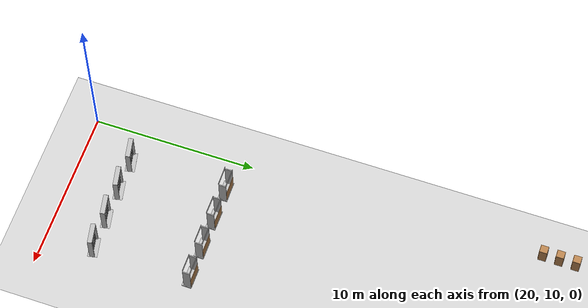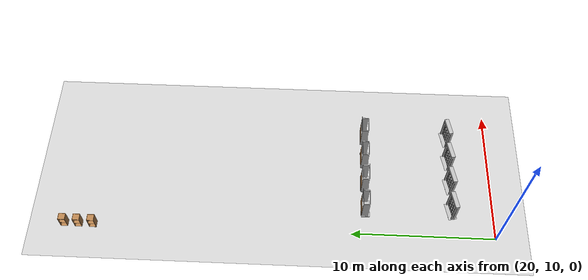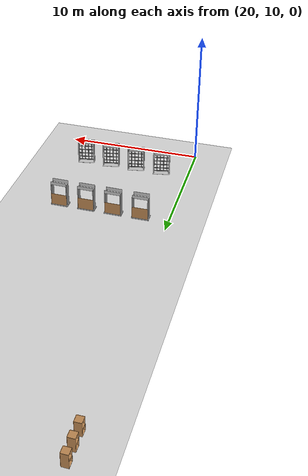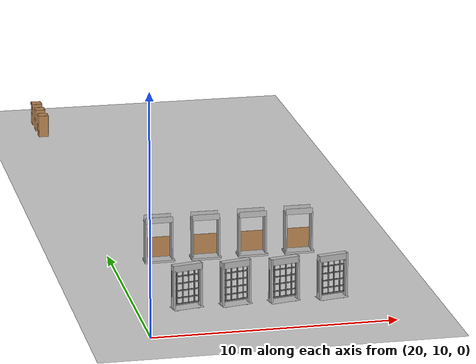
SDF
<sdf version="1.7">
 <world name="default">
  <model name="ground_plane">
   <static>1</static>
   <link name="link">
    <collision name="collision">
     <geometry><plane><normal>0 0 1</normal><size>100 100</size></plane></geometry>
     <surface>
      <contact><collide_bitmask>65535</collide_bitmask></contact>
      <friction><ode><mu>100</mu><mu2>50</mu2></ode></friction>
     </surface>
    </collision>
    <visual name="visual">
     <cast_shadows>0</cast_shadows>
     <geometry><plane><normal>0 0 1</normal><size>100 100</size></plane></geometry>
     <material>
      <script><uri>file://media/materials/scripts/gazebo.material</uri><name>Gazebo/Grey</name></script>
     </material>
    </visual>
   </link>
  </model>
  <model name="cabinet_clone_2">
   <static>1</static>
   <link name="cabinet_bottom_plate">
    <inertial>
     <pose>0 0 -1 0 -0 0</pose>
     <inertia><ixx>2.05</ixx><ixy>0</ixy><ixz>0</ixz><iyy>2.05</iyy><iyz>0</iyz><izz>2.05</izz></inertia>
     <mass>25</mass>
    </inertial>
    <collision name="cabinet_bottom_plate_geom">
     <pose>0 0 0.01 0 -0 0</pose>
     <geometry><box><size>0.45 0.45 0.02</size></box></geometry>
    </collision>
    <visual name="cabinet_bottom_plate_geom_visual">
     <pose>0 0 0.01 0 -0 0</pose>
     <geometry><box><size>0.45 0.45 0.02</size></box></geometry>
     <material>
      <script><uri>file://media/materials/scripts/gazebo.material</uri><name>Gazebo/Wood</name></script>
     </material>
    </visual>
    <collision name="cabinet_bottom_plate_geom_cabinet_back_plate">
     <pose>0.235 0 0.51 0 -0 0</pose>
     <geometry><box><size>0.02 0.45 1.02</size></box></geometry>
    </collision>
    <visual name="cabinet_bottom_plate_geom_cabinet_back_plate_visual">
     <pose>0.235 0 0.51 0 -0 0</pose>
     <geometry><box><size>0.02 0.45 1.02</size></box></geometry>
     <material>
      <script><uri>file://media/materials/scripts/gazebo.material</uri><name>Gazebo/Wood</name></script>
     </material>
    </visual>
    <collision name="cabinet_bottom_plate_geom_cabinet_left_plate">
     <pose>0 0.235 0.51 0 -0 0</pose>
     <geometry><box><size>0.45 0.02 1.02</size></box></geometry>
    </collision>
    <visual name="cabinet_bottom_plate_geom_cabinet_left_plate_visual">
     <pose>0 0.235 0.51 0 -0 0</pose>
     <geometry><box><size>0.45 0.02 1.02</size></box></geometry>
     <material>
      <script><uri>file://media/materials/scripts/gazebo.material</uri><name>Gazebo/Wood</name></script>
     </material>
    </visual>
    <collision name="cabinet_bottom_plate_geom_cabinet_middle_plate">
     <pose>0 0 0.51 0 -0 0</pose>
     <geometry><box><size>0.45 0.45 0.02</size></box></geometry>
    </collision>
    <visual name="cabinet_bottom_plate_geom_cabinet_middle_plate_visual">
     <pose>0 0 0.51 0 -0 0</pose>
     <geometry><box><size>0.45 0.45 0.02</size></box></geometry>
     <material>
      <script><uri>file://media/materials/scripts/gazebo.material</uri><name>Gazebo/Wood</name></script>
     </material>
    </visual>
    <collision name="cabinet_bottom_plate_geom_cabinet_right_plate">
     <pose>0 -0.235 0.51 0 -0 0</pose>
     <geometry><box><size>0.45 0.02 1.02</size></box></geometry>
    </collision>
    <visual name="cabinet_bottom_plate_geom_cabinet_right_plate_visual">
     <pose>0 -0.235 0.51 0 -0 0</pose>
     <geometry><box><size>0.45 0.02 1.02</size></box></geometry>
     <material>
      <script><uri>file://media/materials/scripts/gazebo.material</uri><name>Gazebo/Wood</name></script>
     </material>
    </visual>
    <collision name="cabinet_bottom_plate_geom_cabinet_top_plate">
     <pose>0 0 1.01 0 -0 0</pose>
     <geometry><box><size>0.45 0.45 0.02</size></box></geometry>
    </collision>
    <visual name="cabinet_bottom_plate_geom_cabinet_top_plate_visual">
     <pose>0 0 1.01 0 -0 0</pose>
     <geometry><box><size>0.45 0.45 0.02</size></box></geometry>
     <material>
      <script><uri>file://media/materials/scripts/gazebo.material</uri><name>Gazebo/Wood</name></script>
     </material>
    </visual>
   </link>
   <pose>20 40 0 0 -0 0</pose>
  </model>
  <model name="cabinet_clone_3">
   <static>1</static>
   <link name="cabinet_bottom_plate">
    <inertial>
     <pose>0 0 -1 0 -0 0</pose>
     <inertia><ixx>2.05</ixx><ixy>0</ixy><ixz>0</ixz><iyy>2.05</iyy><iyz>0</iyz><izz>2.05</izz></inertia>
     <mass>25</mass>
    </inertial>
    <collision name="cabinet_bottom_plate_geom">
     <pose>0 0 0.01 0 -0 0</pose>
     <geometry><box><size>0.45 0.45 0.02</size></box></geometry>
    </collision>
    <visual name="cabinet_bottom_plate_geom_visual">
     <pose>0 0 0.01 0 -0 0</pose>
     <geometry><box><size>0.45 0.45 0.02</size></box></geometry>
     <material>
      <script><uri>file://media/materials/scripts/gazebo.material</uri><name>Gazebo/Wood</name></script>
     </material>
    </visual>
    <collision name="cabinet_bottom_plate_geom_cabinet_back_plate">
     <pose>0.235 0 0.51 0 -0 0</pose>
     <geometry><box><size>0.02 0.45 1.02</size></box></geometry>
    </collision>
    <visual name="cabinet_bottom_plate_geom_cabinet_back_plate_visual">
     <pose>0.235 0 0.51 0 -0 0</pose>
     <geometry><box><size>0.02 0.45 1.02</size></box></geometry>
     <material>
      <script><uri>file://media/materials/scripts/gazebo.material</uri><name>Gazebo/Wood</name></script>
     </material>
    </visual>
    <collision name="cabinet_bottom_plate_geom_cabinet_left_plate">
     <pose>0 0.235 0.51 0 -0 0</pose>
     <geometry><box><size>0.45 0.02 1.02</size></box></geometry>
    </collision>
    <visual name="cabinet_bottom_plate_geom_cabinet_left_plate_visual">
     <pose>0 0.235 0.51 0 -0 0</pose>
     <geometry><box><size>0.45 0.02 1.02</size></box></geometry>
     <material>
      <script><uri>file://media/materials/scripts/gazebo.material</uri><name>Gazebo/Wood</name></script>
     </material>
    </visual>
    <collision name="cabinet_bottom_plate_geom_cabinet_middle_plate">
     <pose>0 0 0.51 0 -0 0</pose>
     <geometry><box><size>0.45 0.45 0.02</size></box></geometry>
    </collision>
    <visual name="cabinet_bottom_plate_geom_cabinet_middle_plate_visual">
     <pose>0 0 0.51 0 -0 0</pose>
     <geometry><box><size>0.45 0.45 0.02</size></box></geometry>
     <material>
      <script><uri>file://media/materials/scripts/gazebo.material</uri><name>Gazebo/Wood</name></script>
     </material>
    </visual>
    <collision name="cabinet_bottom_plate_geom_cabinet_right_plate">
     <pose>0 -0.235 0.51 0 -0 0</pose>
     <geometry><box><size>0.45 0.02 1.02</size></box></geometry>
    </collision>
    <visual name="cabinet_bottom_plate_geom_cabinet_right_plate_visual">
     <pose>0 -0.235 0.51 0 -0 0</pose>
     <geometry><box><size>0.45 0.02 1.02</size></box></geometry>
     <material>
      <script><uri>file://media/materials/scripts/gazebo.material</uri><name>Gazebo/Wood</name></script>
     </material>
    </visual>
    <collision name="cabinet_bottom_plate_geom_cabinet_top_plate">
     <pose>0 0 1.01 0 -0 0</pose>
     <geometry><box><size>0.45 0.45 0.02</size></box></geometry>
    </collision>
    <visual name="cabinet_bottom_plate_geom_cabinet_top_plate_visual">
     <pose>0 0 1.01 0 -0 0</pose>
     <geometry><box><size>0.45 0.45 0.02</size></box></geometry>
     <material>
      <script><uri>file://media/materials/scripts/gazebo.material</uri><name>Gazebo/Wood</name></script>
     </material>
    </visual>
   </link>
   <pose>20 39 0 0 -0 0</pose>
  </model>
  <model name="cabinet_clone_4">
   <static>1</static>
   <link name="cabinet_bottom_plate">
    <inertial>
     <pose>0 0 -1 0 -0 0</pose>
     <inertia><ixx>2.05</ixx><ixy>0</ixy><ixz>0</ixz><iyy>2.05</iyy><iyz>0</iyz><izz>2.05</izz></inertia>
     <mass>25</mass>
    </inertial>
    <collision name="cabinet_bottom_plate_geom">
     <pose>0 0 0.01 0 -0 0</pose>
     <geometry><box><size>0.45 0.45 0.02</size></box></geometry>
    </collision>
    <visual name="cabinet_bottom_plate_geom_visual">
     <pose>0 0 0.01 0 -0 0</pose>
     <geometry><box><size>0.45 0.45 0.02</size></box></geometry>
     <material>
      <script><uri>file://media/materials/scripts/gazebo.material</uri><name>Gazebo/Wood</name></script>
     </material>
    </visual>
    <collision name="cabinet_bottom_plate_geom_cabinet_back_plate">
     <pose>0.235 0 0.51 0 -0 0</pose>
     <geometry><box><size>0.02 0.45 1.02</size></box></geometry>
    </collision>
    <visual name="cabinet_bottom_plate_geom_cabinet_back_plate_visual">
     <pose>0.235 0 0.51 0 -0 0</pose>
     <geometry><box><size>0.02 0.45 1.02</size></box></geometry>
     <material>
      <script><uri>file://media/materials/scripts/gazebo.material</uri><name>Gazebo/Wood</name></script>
     </material>
    </visual>
    <collision name="cabinet_bottom_plate_geom_cabinet_left_plate">
     <pose>0 0.235 0.51 0 -0 0</pose>
     <geometry><box><size>0.45 0.02 1.02</size></box></geometry>
    </collision>
    <visual name="cabinet_bottom_plate_geom_cabinet_left_plate_visual">
     <pose>0 0.235 0.51 0 -0 0</pose>
     <geometry><box><size>0.45 0.02 1.02</size></box></geometry>
     <material>
      <script><uri>file://media/materials/scripts/gazebo.material</uri><name>Gazebo/Wood</name></script>
     </material>
    </visual>
    <collision name="cabinet_bottom_plate_geom_cabinet_middle_plate">
     <pose>0 0 0.51 0 -0 0</pose>
     <geometry><box><size>0.45 0.45 0.02</size></box></geometry>
    </collision>
    <visual name="cabinet_bottom_plate_geom_cabinet_middle_plate_visual">
     <pose>0 0 0.51 0 -0 0</pose>
     <geometry><box><size>0.45 0.45 0.02</size></box></geometry>
     <material>
      <script><uri>file://media/materials/scripts/gazebo.material</uri><name>Gazebo/Wood</name></script>
     </material>
    </visual>
    <collision name="cabinet_bottom_plate_geom_cabinet_right_plate">
     <pose>0 -0.235 0.51 0 -0 0</pose>
     <geometry><box><size>0.45 0.02 1.02</size></box></geometry>
    </collision>
    <visual name="cabinet_bottom_plate_geom_cabinet_right_plate_visual">
     <pose>0 -0.235 0.51 0 -0 0</pose>
     <geometry><box><size>0.45 0.02 1.02</size></box></geometry>
     <material>
      <script><uri>file://media/materials/scripts/gazebo.material</uri><name>Gazebo/Wood</name></script>
     </material>
    </visual>
    <collision name="cabinet_bottom_plate_geom_cabinet_top_plate">
     <pose>0 0 1.01 0 -0 0</pose>
     <geometry><box><size>0.45 0.45 0.02</size></box></geometry>
    </collision>
    <visual name="cabinet_bottom_plate_geom_cabinet_top_plate_visual">
     <pose>0 0 1.01 0 -0 0</pose>
     <geometry><box><size>0.45 0.45 0.02</size></box></geometry>
     <material>
      <script><uri>file://media/materials/scripts/gazebo.material</uri><name>Gazebo/Wood</name></script>
     </material>
    </visual>
   </link>
   <pose>20 38 0 0 -0 0</pose>
  </model>
  <model name="frc2016_drawbridge">
   <link name="base">
    <inertial>
     <mass>10</mass>
     <pose>0 0 1 0 -0 0</pose>
     <inertia><ixx>3.64907</ixx><ixy>0</ixy><ixz>0</ixz><iyy>4.67075</iyy><iyz>0</iyz><izz>1.66649</izz></inertia>
    </inertial>
    <visual name="platform">
     <pose>0 0 0.0425 0 -0 0</pose>
     <geometry><box><size>1.27 0.5969 0.085</size></box></geometry>
    </visual>
    <collision name="platform">
     <pose>0 0 0.0425 0 -0 0</pose>
     <geometry><box><size>1.27 0.5969 0.085</size></box></geometry>
    </collision>
    <visual name="right_wall">
     <pose>0.55879 0.04444 0.889 0 -0 0</pose>
     <geometry><box><size>0.05715 0.45698 1.77165</size></box></geometry>
    </visual>
    <collision name="right_wall">
     <pose>0.55879 0.04444 0.889 0 -0 0</pose>
     <geometry><box><size>0.05715 0.45698 1.77165</size></box></geometry>
    </collision>
    <visual name="left_wall">
     <pose>-0.55879 0.04444 0.889 0 -0 0</pose>
     <geometry><box><size>0.05715 0.45698 1.77165</size></box></geometry>
    </visual>
    <collision name="left_wall">
     <pose>-0.55879 0.04444 0.889 0 -0 0</pose>
     <geometry><box><size>0.05715 0.45698 1.77165</size></box></geometry>
    </collision>
    <visual name="front_upper_wall">
     <pose>0 0.27611 1.84286 0 -0 0</pose>
     <geometry><box><size>1.1557 0.006347 0.254</size></box></geometry>
    </visual>
    <collision name="front_upper_wall">
     <pose>0 0.27611 1.84286 0 -0 0</pose>
     <geometry><box><size>1.1557 0.006347 0.254</size></box></geometry>
    </collision>
    <visual name="back_upper_wall">
     <pose>0 -0.18722 1.84286 0 -0 0</pose>
     <geometry><box><size>1.1557 0.006347 0.254</size></box></geometry>
    </visual>
    <collision name="back_upper_wall">
     <pose>0 -0.18722 1.84286 0 -0 0</pose>
     <geometry><box><size>1.1557 0.006347 0.254</size></box></geometry>
    </collision>
   </link>
   <link name="bridge">
    <pose>0 0.28245 0.50577 0 -0 0</pose>
    <inertial>
     <mass>2</mass>
     <pose>0 -0.28245 -0.50577 0 -0 0</pose>
     <inertia>
      <ixx>0.139361</ixx>
      <ixy>0</ixy>
      <ixz>0</ixz>
      <iyy>0.357088</iyy>
      <iyz>0</iyz>
      <izz>0.217741</izz>
     </inertia>
    </inertial>
    <visual name="visual">
     <geometry><box><size>1.14298 0.006347 0.9144</size></box></geometry>
     <material><script><name>Gazebo/WoodFloor</name><uri>__default__</uri></script></material>
    </visual>
    <collision name="collision"><geometry><box><size>1.14298 0.006347 0.9144</size></box></geometry></collision>
   </link>
   <joint name="bridge_joint" type="revolute">
    <pose>0 0 -0.4172 0 -0 0</pose>
    <parent>base</parent>
    <child>bridge</child>
    <axis>
     <xyz>1 0 0</xyz>
     <limit><lower>-2</lower><upper>0</upper></limit>
     <dynamics><spring_reference>0</spring_reference><spring_stiffness>0</spring_stiffness></dynamics>
    </axis>
   </joint>
   <pose>27.9994 18.999 0.009997 -2e-06 4e-06 -0.002642</pose>
  </model>
  <model name="frc2016_drawbridge_0">
   <link name="base">
    <inertial>
     <mass>10</mass>
     <pose>0 0 1 0 -0 0</pose>
     <inertia><ixx>3.64907</ixx><ixy>0</ixy><ixz>0</ixz><iyy>4.67075</iyy><iyz>0</iyz><izz>1.66649</izz></inertia>
    </inertial>
    <visual name="platform">
     <pose>0 0 0.0425 0 -0 0</pose>
     <geometry><box><size>1.27 0.5969 0.085</size></box></geometry>
    </visual>
    <collision name="platform">
     <pose>0 0 0.0425 0 -0 0</pose>
     <geometry><box><size>1.27 0.5969 0.085</size></box></geometry>
    </collision>
    <visual name="right_wall">
     <pose>0.55879 0.04444 0.889 0 -0 0</pose>
     <geometry><box><size>0.05715 0.45698 1.77165</size></box></geometry>
    </visual>
    <collision name="right_wall">
     <pose>0.55879 0.04444 0.889 0 -0 0</pose>
     <geometry><box><size>0.05715 0.45698 1.77165</size></box></geometry>
    </collision>
    <visual name="left_wall">
     <pose>-0.55879 0.04444 0.889 0 -0 0</pose>
     <geometry><box><size>0.05715 0.45698 1.77165</size></box></geometry>
    </visual>
    <collision name="left_wall">
     <pose>-0.55879 0.04444 0.889 0 -0 0</pose>
     <geometry><box><size>0.05715 0.45698 1.77165</size></box></geometry>
    </collision>
    <visual name="front_upper_wall">
     <pose>0 0.27611 1.84286 0 -0 0</pose>
     <geometry><box><size>1.1557 0.006347 0.254</size></box></geometry>
    </visual>
    <collision name="front_upper_wall">
     <pose>0 0.27611 1.84286 0 -0 0</pose>
     <geometry><box><size>1.1557 0.006347 0.254</size></box></geometry>
    </collision>
    <visual name="back_upper_wall">
     <pose>0 -0.18722 1.84286 0 -0 0</pose>
     <geometry><box><size>1.1557 0.006347 0.254</size></box></geometry>
    </visual>
    <collision name="back_upper_wall">
     <pose>0 -0.18722 1.84286 0 -0 0</pose>
     <geometry><box><size>1.1557 0.006347 0.254</size></box></geometry>
    </collision>
   </link>
   <link name="bridge">
    <pose>0 0.28245 0.50577 0 -0 0</pose>
    <inertial>
     <mass>2</mass>
     <pose>0 -0.28245 -0.50577 0 -0 0</pose>
     <inertia>
      <ixx>0.139361</ixx>
      <ixy>0</ixy>
      <ixz>0</ixz>
      <iyy>0.357088</iyy>
      <iyz>0</iyz>
      <izz>0.217741</izz>
     </inertia>
    </inertial>
    <visual name="visual">
     <geometry><box><size>1.14298 0.006347 0.9144</size></box></geometry>
     <material><script><name>Gazebo/WoodFloor</name><uri>__default__</uri></script></material>
    </visual>
    <collision name="collision"><geometry><box><size>1.14298 0.006347 0.9144</size></box></geometry></collision>
   </link>
   <joint name="bridge_joint" type="revolute">
    <pose>0 0 -0.4172 0 -0 0</pose>
    <parent>base</parent>
    <child>bridge</child>
    <axis>
     <xyz>1 0 0</xyz>
     <limit><lower>-2</lower><upper>0</upper></limit>
     <dynamics><spring_reference>0</spring_reference><spring_stiffness>0</spring_stiffness></dynamics>
    </axis>
   </joint>
   <pose>25.9995 18.9991 0.009997 -1e-06 -4e-06 0.004725</pose>
  </model>
  <model name="frc2016_drawbridge_1">
   <link name="base">
    <inertial>
     <mass>10</mass>
     <pose>0 0 1 0 -0 0</pose>
     <inertia><ixx>3.64907</ixx><ixy>0</ixy><ixz>0</ixz><iyy>4.67075</iyy><iyz>0</iyz><izz>1.66649</izz></inertia>
    </inertial>
    <visual name="platform">
     <pose>0 0 0.0425 0 -0 0</pose>
     <geometry><box><size>1.27 0.5969 0.085</size></box></geometry>
    </visual>
    <collision name="platform">
     <pose>0 0 0.0425 0 -0 0</pose>
     <geometry><box><size>1.27 0.5969 0.085</size></box></geometry>
    </collision>
    <visual name="right_wall">
     <pose>0.55879 0.04444 0.889 0 -0 0</pose>
     <geometry><box><size>0.05715 0.45698 1.77165</size></box></geometry>
    </visual>
    <collision name="right_wall">
     <pose>0.55879 0.04444 0.889 0 -0 0</pose>
     <geometry><box><size>0.05715 0.45698 1.77165</size></box></geometry>
    </collision>
    <visual name="left_wall">
     <pose>-0.55879 0.04444 0.889 0 -0 0</pose>
     <geometry><box><size>0.05715 0.45698 1.77165</size></box></geometry>
    </visual>
    <collision name="left_wall">
     <pose>-0.55879 0.04444 0.889 0 -0 0</pose>
     <geometry><box><size>0.05715 0.45698 1.77165</size></box></geometry>
    </collision>
    <visual name="front_upper_wall">
     <pose>0 0.27611 1.84286 0 -0 0</pose>
     <geometry><box><size>1.1557 0.006347 0.254</size></box></geometry>
    </visual>
    <collision name="front_upper_wall">
     <pose>0 0.27611 1.84286 0 -0 0</pose>
     <geometry><box><size>1.1557 0.006347 0.254</size></box></geometry>
    </collision>
    <visual name="back_upper_wall">
     <pose>0 -0.18722 1.84286 0 -0 0</pose>
     <geometry><box><size>1.1557 0.006347 0.254</size></box></geometry>
    </visual>
    <collision name="back_upper_wall">
     <pose>0 -0.18722 1.84286 0 -0 0</pose>
     <geometry><box><size>1.1557 0.006347 0.254</size></box></geometry>
    </collision>
   </link>
   <link name="bridge">
    <pose>0 0.28245 0.50577 0 -0 0</pose>
    <inertial>
     <mass>2</mass>
     <pose>0 -0.28245 -0.50577 0 -0 0</pose>
     <inertia>
      <ixx>0.139361</ixx>
      <ixy>0</ixy>
      <ixz>0</ixz>
      <iyy>0.357088</iyy>
      <iyz>0</iyz>
      <izz>0.217741</izz>
     </inertia>
    </inertial>
    <visual name="visual">
     <geometry><box><size>1.14298 0.006347 0.9144</size></box></geometry>
     <material><script><name>Gazebo/WoodFloor</name><uri>__default__</uri></script></material>
    </visual>
    <collision name="collision"><geometry><box><size>1.14298 0.006347 0.9144</size></box></geometry></collision>
   </link>
   <joint name="bridge_joint" type="revolute">
    <pose>0 0 -0.4172 0 -0 0</pose>
    <parent>base</parent>
    <child>bridge</child>
    <axis>
     <xyz>1 0 0</xyz>
     <limit><lower>-2</lower><upper>0</upper></limit>
     <dynamics><spring_reference>0</spring_reference><spring_stiffness>0</spring_stiffness></dynamics>
    </axis>
   </joint>
   <pose>23.9995 18.999 0.009996 -3e-06 -4e-06 -0.006369</pose>
  </model>
  <model name="frc2016_drawbridge_2">
   <link name="base">
    <inertial>
     <mass>10</mass>
     <pose>0 0 1 0 -0 0</pose>
     <inertia><ixx>3.64907</ixx><ixy>0</ixy><ixz>0</ixz><iyy>4.67075</iyy><iyz>0</iyz><izz>1.66649</izz></inertia>
    </inertial>
    <visual name="platform">
     <pose>0 0 0.0425 0 -0 0</pose>
     <geometry><box><size>1.27 0.5969 0.085</size></box></geometry>
    </visual>
    <collision name="platform">
     <pose>0 0 0.0425 0 -0 0</pose>
     <geometry><box><size>1.27 0.5969 0.085</size></box></geometry>
    </collision>
    <visual name="right_wall">
     <pose>0.55879 0.04444 0.889 0 -0 0</pose>
     <geometry><box><size>0.05715 0.45698 1.77165</size></box></geometry>
    </visual>
    <collision name="right_wall">
     <pose>0.55879 0.04444 0.889 0 -0 0</pose>
     <geometry><box><size>0.05715 0.45698 1.77165</size></box></geometry>
    </collision>
    <visual name="left_wall">
     <pose>-0.55879 0.04444 0.889 0 -0 0</pose>
     <geometry><box><size>0.05715 0.45698 1.77165</size></box></geometry>
    </visual>
    <collision name="left_wall">
     <pose>-0.55879 0.04444 0.889 0 -0 0</pose>
     <geometry><box><size>0.05715 0.45698 1.77165</size></box></geometry>
    </collision>
    <visual name="front_upper_wall">
     <pose>0 0.27611 1.84286 0 -0 0</pose>
     <geometry><box><size>1.1557 0.006347 0.254</size></box></geometry>
    </visual>
    <collision name="front_upper_wall">
     <pose>0 0.27611 1.84286 0 -0 0</pose>
     <geometry><box><size>1.1557 0.006347 0.254</size></box></geometry>
    </collision>
    <visual name="back_upper_wall">
     <pose>0 -0.18722 1.84286 0 -0 0</pose>
     <geometry><box><size>1.1557 0.006347 0.254</size></box></geometry>
    </visual>
    <collision name="back_upper_wall">
     <pose>0 -0.18722 1.84286 0 -0 0</pose>
     <geometry><box><size>1.1557 0.006347 0.254</size></box></geometry>
    </collision>
   </link>
   <link name="bridge">
    <pose>0 0.28245 0.50577 0 -0 0</pose>
    <inertial>
     <mass>2</mass>
     <pose>0 -0.28245 -0.50577 0 -0 0</pose>
     <inertia>
      <ixx>0.139361</ixx>
      <ixy>0</ixy>
      <ixz>0</ixz>
      <iyy>0.357088</iyy>
      <iyz>0</iyz>
      <izz>0.217741</izz>
     </inertia>
    </inertial>
    <visual name="visual">
     <geometry><box><size>1.14298 0.006347 0.9144</size></box></geometry>
     <material><script><name>Gazebo/WoodFloor</name><uri>__default__</uri></script></material>
    </visual>
    <collision name="collision"><geometry><box><size>1.14298 0.006347 0.9144</size></box></geometry></collision>
   </link>
   <joint name="bridge_joint" type="revolute">
    <pose>0 0 -0.4172 0 -0 0</pose>
    <parent>base</parent>
    <child>bridge</child>
    <axis>
     <xyz>1 0 0</xyz>
     <limit><lower>-2</lower><upper>0</upper></limit>
     <dynamics><spring_reference>0</spring_reference><spring_stiffness>0</spring_stiffness></dynamics>
    </axis>
   </joint>
   <pose>22.0001 18.9994 0.01 0 1e-06 0.013708</pose>
  </model>
  <model name="frc2016_portcullis">
   <link name="base">
    <inertial>
     <mass>50</mass>
     <pose>0 0 1.02941 0 -0 0</pose>
     <inertia><ixx>3.81711</ixx><ixy>0</ixy><ixz>0</ixz><iyy>4.87698</iyy><iyz>0</iyz><izz>1.6283</izz></inertia>
    </inertial>
    <visual name="platform">
     <pose>0 0 0.07284 0 -0 0</pose>
     <geometry><box><size>1.27 0.5842 0.003175</size></box></geometry>
    </visual>
    <collision name="platform">
     <pose>0 0 0.07284 0 -0 0</pose>
     <geometry><box><size>1.27 0.5842 0.003175</size></box></geometry>
    </collision>
    <visual name="left_column">
     <pose>0.59284 0 0.99042 0 -0 0</pose>
     <geometry><box><size>0.08375 0.28575 1.83198</size></box></geometry>
    </visual>
    <collision name="left_column">
     <pose>0.59284 0 0.99042 0 -0 0</pose>
     <geometry><box><size>0.08375 0.28575 1.83198</size></box></geometry>
    </collision>
    <visual name="right_column">
     <pose>-0.57759 0 0.99042 0 -0 0</pose>
     <geometry><box><size>0.08375 0.28575 1.83198</size></box></geometry>
    </visual>
    <collision name="right_column">
     <pose>-0.57759 0 0.99042 0 -0 0</pose>
     <geometry><box><size>0.08375 0.28575 1.83198</size></box></geometry>
    </collision>
    <visual name="top">
     <pose>-0.00034 0 1.77722 0 -0 0</pose>
     <geometry><box><size>1.22962 0.28575 0.26657</size></box></geometry>
    </visual>
    <collision name="top">
     <pose>-0.00034 0 1.77722 0 -0 0</pose>
     <geometry><box><size>1.22962 0.28575 0.26657</size></box></geometry>
    </collision>
    <visual name="castor1">
     <pose>-0.45651 -0.16234 0.03272 0 -0 0</pose>
     <geometry><sphere><radius>0.03272</radius></sphere></geometry>
    </visual>
    <collision name="castor1">
     <pose>-0.45651 -0.16234 0.03272 0 -0 0</pose>
     <geometry><sphere><radius>0.03272</radius></sphere></geometry>
    </collision>
    <visual name="castor2">
     <pose>-0.27883 0.21836 0.03272 0 -0 0</pose>
     <geometry><sphere><radius>0.03272</radius></sphere></geometry>
    </visual>
    <collision name="castor2">
     <pose>-0.27883 0.21836 0.03272 0 -0 0</pose>
     <geometry><sphere><radius>0.03272</radius></sphere></geometry>
    </collision>
    <visual name="castor3">
     <pose>0.28083 0.21906 0.03272 0 -0 0</pose>
     <geometry><sphere><radius>0.03272</radius></sphere></geometry>
    </visual>
    <collision name="castor3">
     <pose>0.28083 0.21906 0.03272 0 -0 0</pose>
     <geometry><sphere><radius>0.03272</radius></sphere></geometry>
    </collision>
    <visual name="castor4">
     <pose>0.45871 -0.16186 0.03272 0 -0 0</pose>
     <geometry><sphere><radius>0.03272</radius></sphere></geometry>
    </visual>
    <collision name="castor4">
     <pose>0.45871 -0.16186 0.03272 0 -0 0</pose>
     <geometry><sphere><radius>0.03272</radius></sphere></geometry>
    </collision>
   </link>
   <link name="gate">
    <pose>-0.0287 0.02885 0.93327 0 -0 0</pose>
    <inertial>
     <mass>2</mass>
     <inertia><ixx>3.81711</ixx><ixy>0</ixy><ixz>0</ixz><iyy>4.87698</iyy><iyz>0</iyz><izz>1.6283</izz></inertia>
    </inertial>
    <collision name="collision"><geometry><box><size>1.1938 0.02496 1.45732</size></box></geometry></collision>
    <visual name="horz_1">
     <pose>0 0 -0.70326 0 -0 0</pose>
     <geometry><box><size>1.1938 0.02496 0.0508</size></box></geometry>
     <material><ambient>0.4 0.4 0.4 1</ambient><diffuse>0.4 0.4 0.4 1</diffuse></material>
    </visual>
    <visual name="horz_2">
     <pose>0 0 -0.44926 0 -0 0</pose>
     <geometry><box><size>1.1938 0.02496 0.0508</size></box></geometry>
     <material><ambient>0.4 0.4 0.4 1</ambient><diffuse>0.4 0.4 0.4 1</diffuse></material>
    </visual>
    <visual name="horz_3">
     <pose>0 0 -0.14517 0 -0 0</pose>
     <geometry><box><size>1.1938 0.02496 0.0508</size></box></geometry>
     <material><ambient>0.4 0.4 0.4 1</ambient><diffuse>0.4 0.4 0.4 1</diffuse></material>
    </visual>
    <visual name="horz_4">
     <pose>0 0 0.16034 0 -0 0</pose>
     <geometry><box><size>1.1938 0.02496 0.0508</size></box></geometry>
     <material><ambient>0.4 0.4 0.4 1</ambient><diffuse>0.4 0.4 0.4 1</diffuse></material>
    </visual>
    <visual name="horz_5">
     <pose>0 0 0.46514 0 -0 0</pose>
     <geometry><box><size>1.1938 0.02496 0.0508</size></box></geometry>
     <material><ambient>0.4 0.4 0.4 1</ambient><diffuse>0.4 0.4 0.4 1</diffuse></material>
    </visual>
    <visual name="horz_6">
     <pose>0 0 0.72994 0 -0 0</pose>
     <geometry><box><size>1.1938 0.02496 0.0508</size></box></geometry>
     <material><ambient>0.4 0.4 0.4 1</ambient><diffuse>0.4 0.4 0.4 1</diffuse></material>
    </visual>
    <visual name="vert_1">
     <pose>-0.58448 0 0 0 -0 0</pose>
     <geometry><box><size>0.02495 0.02496 1.45732</size></box></geometry>
     <material><ambient>0.4 0.4 0.4 1</ambient><diffuse>0.4 0.4 0.4 1</diffuse></material>
    </visual>
    <visual name="vert_2">
     <pose>-0.38128 0 0 0 -0 0</pose>
     <geometry><box><size>0.0508 0.02496 1.45732</size></box></geometry>
     <material><ambient>0.4 0.4 0.4 1</ambient><diffuse>0.4 0.4 0.4 1</diffuse></material>
    </visual>
    <visual name="vert_3">
     <pose>-0.12728 0 0 0 -0 0</pose>
     <geometry><box><size>0.0508 0.02496 1.45732</size></box></geometry>
     <material><ambient>0.4 0.4 0.4 1</ambient><diffuse>0.4 0.4 0.4 1</diffuse></material>
    </visual>
    <visual name="vert_4">
     <pose>0.12672 0 0 0 -0 0</pose>
     <geometry><box><size>0.0508 0.02496 1.45732</size></box></geometry>
     <material><ambient>0.4 0.4 0.4 1</ambient><diffuse>0.4 0.4 0.4 1</diffuse></material>
    </visual>
    <visual name="vert_5">
     <pose>0.38072 0 0 0 -0 0</pose>
     <geometry><box><size>0.0508 0.02496 1.45732</size></box></geometry>
     <material><ambient>0.4 0.4 0.4 1</ambient><diffuse>0.4 0.4 0.4 1</diffuse></material>
    </visual>
    <visual name="vert_6">
     <pose>0.58392 0 0 0 -0 0</pose>
     <geometry><box><size>0.02495 0.02496 1.45732</size></box></geometry>
     <material><ambient>0.4 0.4 0.4 1</ambient><diffuse>0.4 0.4 0.4 1</diffuse></material>
    </visual>
   </link>
   <joint name="joint" type="prismatic">
    <parent>base</parent>
    <child>gate</child>
    <axis>
     <xyz>0 0 1</xyz>
     <limit><lower>0</lower><upper>1</upper></limit>
     <dynamics><spring_reference>0</spring_reference><spring_stiffness>0</spring_stiffness></dynamics>
    </axis>
   </joint>
   <pose>28.0163 12.9882 0.01 0 -1e-06 0.201641</pose>
  </model>
  <model name="frc2016_portcullis_0">
   <link name="base">
    <inertial>
     <mass>50</mass>
     <pose>0 0 1.02941 0 -0 0</pose>
     <inertia><ixx>3.81711</ixx><ixy>0</ixy><ixz>0</ixz><iyy>4.87698</iyy><iyz>0</iyz><izz>1.6283</izz></inertia>
    </inertial>
    <visual name="platform">
     <pose>0 0 0.07284 0 -0 0</pose>
     <geometry><box><size>1.27 0.5842 0.003175</size></box></geometry>
    </visual>
    <collision name="platform">
     <pose>0 0 0.07284 0 -0 0</pose>
     <geometry><box><size>1.27 0.5842 0.003175</size></box></geometry>
    </collision>
    <visual name="left_column">
     <pose>0.59284 0 0.99042 0 -0 0</pose>
     <geometry><box><size>0.08375 0.28575 1.83198</size></box></geometry>
    </visual>
    <collision name="left_column">
     <pose>0.59284 0 0.99042 0 -0 0</pose>
     <geometry><box><size>0.08375 0.28575 1.83198</size></box></geometry>
    </collision>
    <visual name="right_column">
     <pose>-0.57759 0 0.99042 0 -0 0</pose>
     <geometry><box><size>0.08375 0.28575 1.83198</size></box></geometry>
    </visual>
    <collision name="right_column">
     <pose>-0.57759 0 0.99042 0 -0 0</pose>
     <geometry><box><size>0.08375 0.28575 1.83198</size></box></geometry>
    </collision>
    <visual name="top">
     <pose>-0.00034 0 1.77722 0 -0 0</pose>
     <geometry><box><size>1.22962 0.28575 0.26657</size></box></geometry>
    </visual>
    <collision name="top">
     <pose>-0.00034 0 1.77722 0 -0 0</pose>
     <geometry><box><size>1.22962 0.28575 0.26657</size></box></geometry>
    </collision>
    <visual name="castor1">
     <pose>-0.45651 -0.16234 0.03272 0 -0 0</pose>
     <geometry><sphere><radius>0.03272</radius></sphere></geometry>
    </visual>
    <collision name="castor1">
     <pose>-0.45651 -0.16234 0.03272 0 -0 0</pose>
     <geometry><sphere><radius>0.03272</radius></sphere></geometry>
    </collision>
    <visual name="castor2">
     <pose>-0.27883 0.21836 0.03272 0 -0 0</pose>
     <geometry><sphere><radius>0.03272</radius></sphere></geometry>
    </visual>
    <collision name="castor2">
     <pose>-0.27883 0.21836 0.03272 0 -0 0</pose>
     <geometry><sphere><radius>0.03272</radius></sphere></geometry>
    </collision>
    <visual name="castor3">
     <pose>0.28083 0.21906 0.03272 0 -0 0</pose>
     <geometry><sphere><radius>0.03272</radius></sphere></geometry>
    </visual>
    <collision name="castor3">
     <pose>0.28083 0.21906 0.03272 0 -0 0</pose>
     <geometry><sphere><radius>0.03272</radius></sphere></geometry>
    </collision>
    <visual name="castor4">
     <pose>0.45871 -0.16186 0.03272 0 -0 0</pose>
     <geometry><sphere><radius>0.03272</radius></sphere></geometry>
    </visual>
    <collision name="castor4">
     <pose>0.45871 -0.16186 0.03272 0 -0 0</pose>
     <geometry><sphere><radius>0.03272</radius></sphere></geometry>
    </collision>
   </link>
   <link name="gate">
    <pose>-0.0287 0.02885 0.93327 0 -0 0</pose>
    <inertial>
     <mass>2</mass>
     <inertia><ixx>3.81711</ixx><ixy>0</ixy><ixz>0</ixz><iyy>4.87698</iyy><iyz>0</iyz><izz>1.6283</izz></inertia>
    </inertial>
    <collision name="collision"><geometry><box><size>1.1938 0.02496 1.45732</size></box></geometry></collision>
    <visual name="horz_1">
     <pose>0 0 -0.70326 0 -0 0</pose>
     <geometry><box><size>1.1938 0.02496 0.0508</size></box></geometry>
     <material><ambient>0.4 0.4 0.4 1</ambient><diffuse>0.4 0.4 0.4 1</diffuse></material>
    </visual>
    <visual name="horz_2">
     <pose>0 0 -0.44926 0 -0 0</pose>
     <geometry><box><size>1.1938 0.02496 0.0508</size></box></geometry>
     <material><ambient>0.4 0.4 0.4 1</ambient><diffuse>0.4 0.4 0.4 1</diffuse></material>
    </visual>
    <visual name="horz_3">
     <pose>0 0 -0.14517 0 -0 0</pose>
     <geometry><box><size>1.1938 0.02496 0.0508</size></box></geometry>
     <material><ambient>0.4 0.4 0.4 1</ambient><diffuse>0.4 0.4 0.4 1</diffuse></material>
    </visual>
    <visual name="horz_4">
     <pose>0 0 0.16034 0 -0 0</pose>
     <geometry><box><size>1.1938 0.02496 0.0508</size></box></geometry>
     <material><ambient>0.4 0.4 0.4 1</ambient><diffuse>0.4 0.4 0.4 1</diffuse></material>
    </visual>
    <visual name="horz_5">
     <pose>0 0 0.46514 0 -0 0</pose>
     <geometry><box><size>1.1938 0.02496 0.0508</size></box></geometry>
     <material><ambient>0.4 0.4 0.4 1</ambient><diffuse>0.4 0.4 0.4 1</diffuse></material>
    </visual>
    <visual name="horz_6">
     <pose>0 0 0.72994 0 -0 0</pose>
     <geometry><box><size>1.1938 0.02496 0.0508</size></box></geometry>
     <material><ambient>0.4 0.4 0.4 1</ambient><diffuse>0.4 0.4 0.4 1</diffuse></material>
    </visual>
    <visual name="vert_1">
     <pose>-0.58448 0 0 0 -0 0</pose>
     <geometry><box><size>0.02495 0.02496 1.45732</size></box></geometry>
     <material><ambient>0.4 0.4 0.4 1</ambient><diffuse>0.4 0.4 0.4 1</diffuse></material>
    </visual>
    <visual name="vert_2">
     <pose>-0.38128 0 0 0 -0 0</pose>
     <geometry><box><size>0.0508 0.02496 1.45732</size></box></geometry>
     <material><ambient>0.4 0.4 0.4 1</ambient><diffuse>0.4 0.4 0.4 1</diffuse></material>
    </visual>
    <visual name="vert_3">
     <pose>-0.12728 0 0 0 -0 0</pose>
     <geometry><box><size>0.0508 0.02496 1.45732</size></box></geometry>
     <material><ambient>0.4 0.4 0.4 1</ambient><diffuse>0.4 0.4 0.4 1</diffuse></material>
    </visual>
    <visual name="vert_4">
     <pose>0.12672 0 0 0 -0 0</pose>
     <geometry><box><size>0.0508 0.02496 1.45732</size></box></geometry>
     <material><ambient>0.4 0.4 0.4 1</ambient><diffuse>0.4 0.4 0.4 1</diffuse></material>
    </visual>
    <visual name="vert_5">
     <pose>0.38072 0 0 0 -0 0</pose>
     <geometry><box><size>0.0508 0.02496 1.45732</size></box></geometry>
     <material><ambient>0.4 0.4 0.4 1</ambient><diffuse>0.4 0.4 0.4 1</diffuse></material>
    </visual>
    <visual name="vert_6">
     <pose>0.58392 0 0 0 -0 0</pose>
     <geometry><box><size>0.02495 0.02496 1.45732</size></box></geometry>
     <material><ambient>0.4 0.4 0.4 1</ambient><diffuse>0.4 0.4 0.4 1</diffuse></material>
    </visual>
   </link>
   <joint name="joint" type="prismatic">
    <parent>base</parent>
    <child>gate</child>
    <axis>
     <xyz>0 0 1</xyz>
     <limit><lower>0</lower><upper>1</upper></limit>
     <dynamics><spring_reference>0</spring_reference><spring_stiffness>0</spring_stiffness></dynamics>
    </axis>
   </joint>
   <pose>26.0168 12.9889 0.01 1e-06 -0 0.201936</pose>
  </model>
  <model name="frc2016_portcullis_1">
   <link name="base">
    <inertial>
     <mass>50</mass>
     <pose>0 0 1.02941 0 -0 0</pose>
     <inertia><ixx>3.81711</ixx><ixy>0</ixy><ixz>0</ixz><iyy>4.87698</iyy><iyz>0</iyz><izz>1.6283</izz></inertia>
    </inertial>
    <visual name="platform">
     <pose>0 0 0.07284 0 -0 0</pose>
     <geometry><box><size>1.27 0.5842 0.003175</size></box></geometry>
    </visual>
    <collision name="platform">
     <pose>0 0 0.07284 0 -0 0</pose>
     <geometry><box><size>1.27 0.5842 0.003175</size></box></geometry>
    </collision>
    <visual name="left_column">
     <pose>0.59284 0 0.99042 0 -0 0</pose>
     <geometry><box><size>0.08375 0.28575 1.83198</size></box></geometry>
    </visual>
    <collision name="left_column">
     <pose>0.59284 0 0.99042 0 -0 0</pose>
     <geometry><box><size>0.08375 0.28575 1.83198</size></box></geometry>
    </collision>
    <visual name="right_column">
     <pose>-0.57759 0 0.99042 0 -0 0</pose>
     <geometry><box><size>0.08375 0.28575 1.83198</size></box></geometry>
    </visual>
    <collision name="right_column">
     <pose>-0.57759 0 0.99042 0 -0 0</pose>
     <geometry><box><size>0.08375 0.28575 1.83198</size></box></geometry>
    </collision>
    <visual name="top">
     <pose>-0.00034 0 1.77722 0 -0 0</pose>
     <geometry><box><size>1.22962 0.28575 0.26657</size></box></geometry>
    </visual>
    <collision name="top">
     <pose>-0.00034 0 1.77722 0 -0 0</pose>
     <geometry><box><size>1.22962 0.28575 0.26657</size></box></geometry>
    </collision>
    <visual name="castor1">
     <pose>-0.45651 -0.16234 0.03272 0 -0 0</pose>
     <geometry><sphere><radius>0.03272</radius></sphere></geometry>
    </visual>
    <collision name="castor1">
     <pose>-0.45651 -0.16234 0.03272 0 -0 0</pose>
     <geometry><sphere><radius>0.03272</radius></sphere></geometry>
    </collision>
    <visual name="castor2">
     <pose>-0.27883 0.21836 0.03272 0 -0 0</pose>
     <geometry><sphere><radius>0.03272</radius></sphere></geometry>
    </visual>
    <collision name="castor2">
     <pose>-0.27883 0.21836 0.03272 0 -0 0</pose>
     <geometry><sphere><radius>0.03272</radius></sphere></geometry>
    </collision>
    <visual name="castor3">
     <pose>0.28083 0.21906 0.03272 0 -0 0</pose>
     <geometry><sphere><radius>0.03272</radius></sphere></geometry>
    </visual>
    <collision name="castor3">
     <pose>0.28083 0.21906 0.03272 0 -0 0</pose>
     <geometry><sphere><radius>0.03272</radius></sphere></geometry>
    </collision>
    <visual name="castor4">
     <pose>0.45871 -0.16186 0.03272 0 -0 0</pose>
     <geometry><sphere><radius>0.03272</radius></sphere></geometry>
    </visual>
    <collision name="castor4">
     <pose>0.45871 -0.16186 0.03272 0 -0 0</pose>
     <geometry><sphere><radius>0.03272</radius></sphere></geometry>
    </collision>
   </link>
   <link name="gate">
    <pose>-0.0287 0.02885 0.93327 0 -0 0</pose>
    <inertial>
     <mass>2</mass>
     <inertia><ixx>3.81711</ixx><ixy>0</ixy><ixz>0</ixz><iyy>4.87698</iyy><iyz>0</iyz><izz>1.6283</izz></inertia>
    </inertial>
    <collision name="collision"><geometry><box><size>1.1938 0.02496 1.45732</size></box></geometry></collision>
    <visual name="horz_1">
     <pose>0 0 -0.70326 0 -0 0</pose>
     <geometry><box><size>1.1938 0.02496 0.0508</size></box></geometry>
     <material><ambient>0.4 0.4 0.4 1</ambient><diffuse>0.4 0.4 0.4 1</diffuse></material>
    </visual>
    <visual name="horz_2">
     <pose>0 0 -0.44926 0 -0 0</pose>
     <geometry><box><size>1.1938 0.02496 0.0508</size></box></geometry>
     <material><ambient>0.4 0.4 0.4 1</ambient><diffuse>0.4 0.4 0.4 1</diffuse></material>
    </visual>
    <visual name="horz_3">
     <pose>0 0 -0.14517 0 -0 0</pose>
     <geometry><box><size>1.1938 0.02496 0.0508</size></box></geometry>
     <material><ambient>0.4 0.4 0.4 1</ambient><diffuse>0.4 0.4 0.4 1</diffuse></material>
    </visual>
    <visual name="horz_4">
     <pose>0 0 0.16034 0 -0 0</pose>
     <geometry><box><size>1.1938 0.02496 0.0508</size></box></geometry>
     <material><ambient>0.4 0.4 0.4 1</ambient><diffuse>0.4 0.4 0.4 1</diffuse></material>
    </visual>
    <visual name="horz_5">
     <pose>0 0 0.46514 0 -0 0</pose>
     <geometry><box><size>1.1938 0.02496 0.0508</size></box></geometry>
     <material><ambient>0.4 0.4 0.4 1</ambient><diffuse>0.4 0.4 0.4 1</diffuse></material>
    </visual>
    <visual name="horz_6">
     <pose>0 0 0.72994 0 -0 0</pose>
     <geometry><box><size>1.1938 0.02496 0.0508</size></box></geometry>
     <material><ambient>0.4 0.4 0.4 1</ambient><diffuse>0.4 0.4 0.4 1</diffuse></material>
    </visual>
    <visual name="vert_1">
     <pose>-0.58448 0 0 0 -0 0</pose>
     <geometry><box><size>0.02495 0.02496 1.45732</size></box></geometry>
     <material><ambient>0.4 0.4 0.4 1</ambient><diffuse>0.4 0.4 0.4 1</diffuse></material>
    </visual>
    <visual name="vert_2">
     <pose>-0.38128 0 0 0 -0 0</pose>
     <geometry><box><size>0.0508 0.02496 1.45732</size></box></geometry>
     <material><ambient>0.4 0.4 0.4 1</ambient><diffuse>0.4 0.4 0.4 1</diffuse></material>
    </visual>
    <visual name="vert_3">
     <pose>-0.12728 0 0 0 -0 0</pose>
     <geometry><box><size>0.0508 0.02496 1.45732</size></box></geometry>
     <material><ambient>0.4 0.4 0.4 1</ambient><diffuse>0.4 0.4 0.4 1</diffuse></material>
    </visual>
    <visual name="vert_4">
     <pose>0.12672 0 0 0 -0 0</pose>
     <geometry><box><size>0.0508 0.02496 1.45732</size></box></geometry>
     <material><ambient>0.4 0.4 0.4 1</ambient><diffuse>0.4 0.4 0.4 1</diffuse></material>
    </visual>
    <visual name="vert_5">
     <pose>0.38072 0 0 0 -0 0</pose>
     <geometry><box><size>0.0508 0.02496 1.45732</size></box></geometry>
     <material><ambient>0.4 0.4 0.4 1</ambient><diffuse>0.4 0.4 0.4 1</diffuse></material>
    </visual>
    <visual name="vert_6">
     <pose>0.58392 0 0 0 -0 0</pose>
     <geometry><box><size>0.02495 0.02496 1.45732</size></box></geometry>
     <material><ambient>0.4 0.4 0.4 1</ambient><diffuse>0.4 0.4 0.4 1</diffuse></material>
    </visual>
   </link>
   <joint name="joint" type="prismatic">
    <parent>base</parent>
    <child>gate</child>
    <axis>
     <xyz>0 0 1</xyz>
     <limit><lower>0</lower><upper>1</upper></limit>
     <dynamics><spring_reference>0</spring_reference><spring_stiffness>0</spring_stiffness></dynamics>
    </axis>
   </joint>
   <pose>24.0168 12.9898 0.01 1e-06 -0 0.20194</pose>
  </model>
  <model name="frc2016_portcullis_2">
   <link name="base">
    <inertial>
     <mass>50</mass>
     <pose>0 0 1.02941 0 -0 0</pose>
     <inertia><ixx>3.81711</ixx><ixy>0</ixy><ixz>0</ixz><iyy>4.87698</iyy><iyz>0</iyz><izz>1.6283</izz></inertia>
    </inertial>
    <visual name="platform">
     <pose>0 0 0.07284 0 -0 0</pose>
     <geometry><box><size>1.27 0.5842 0.003175</size></box></geometry>
    </visual>
    <collision name="platform">
     <pose>0 0 0.07284 0 -0 0</pose>
     <geometry><box><size>1.27 0.5842 0.003175</size></box></geometry>
    </collision>
    <visual name="left_column">
     <pose>0.59284 0 0.99042 0 -0 0</pose>
     <geometry><box><size>0.08375 0.28575 1.83198</size></box></geometry>
    </visual>
    <collision name="left_column">
     <pose>0.59284 0 0.99042 0 -0 0</pose>
     <geometry><box><size>0.08375 0.28575 1.83198</size></box></geometry>
    </collision>
    <visual name="right_column">
     <pose>-0.57759 0 0.99042 0 -0 0</pose>
     <geometry><box><size>0.08375 0.28575 1.83198</size></box></geometry>
    </visual>
    <collision name="right_column">
     <pose>-0.57759 0 0.99042 0 -0 0</pose>
     <geometry><box><size>0.08375 0.28575 1.83198</size></box></geometry>
    </collision>
    <visual name="top">
     <pose>-0.00034 0 1.77722 0 -0 0</pose>
     <geometry><box><size>1.22962 0.28575 0.26657</size></box></geometry>
    </visual>
    <collision name="top">
     <pose>-0.00034 0 1.77722 0 -0 0</pose>
     <geometry><box><size>1.22962 0.28575 0.26657</size></box></geometry>
    </collision>
    <visual name="castor1">
     <pose>-0.45651 -0.16234 0.03272 0 -0 0</pose>
     <geometry><sphere><radius>0.03272</radius></sphere></geometry>
    </visual>
    <collision name="castor1">
     <pose>-0.45651 -0.16234 0.03272 0 -0 0</pose>
     <geometry><sphere><radius>0.03272</radius></sphere></geometry>
    </collision>
    <visual name="castor2">
     <pose>-0.27883 0.21836 0.03272 0 -0 0</pose>
     <geometry><sphere><radius>0.03272</radius></sphere></geometry>
    </visual>
    <collision name="castor2">
     <pose>-0.27883 0.21836 0.03272 0 -0 0</pose>
     <geometry><sphere><radius>0.03272</radius></sphere></geometry>
    </collision>
    <visual name="castor3">
     <pose>0.28083 0.21906 0.03272 0 -0 0</pose>
     <geometry><sphere><radius>0.03272</radius></sphere></geometry>
    </visual>
    <collision name="castor3">
     <pose>0.28083 0.21906 0.03272 0 -0 0</pose>
     <geometry><sphere><radius>0.03272</radius></sphere></geometry>
    </collision>
    <visual name="castor4">
     <pose>0.45871 -0.16186 0.03272 0 -0 0</pose>
     <geometry><sphere><radius>0.03272</radius></sphere></geometry>
    </visual>
    <collision name="castor4">
     <pose>0.45871 -0.16186 0.03272 0 -0 0</pose>
     <geometry><sphere><radius>0.03272</radius></sphere></geometry>
    </collision>
   </link>
   <link name="gate">
    <pose>-0.0287 0.02885 0.93327 0 -0 0</pose>
    <inertial>
     <mass>2</mass>
     <inertia><ixx>3.81711</ixx><ixy>0</ixy><ixz>0</ixz><iyy>4.87698</iyy><iyz>0</iyz><izz>1.6283</izz></inertia>
    </inertial>
    <collision name="collision"><geometry><box><size>1.1938 0.02496 1.45732</size></box></geometry></collision>
    <visual name="horz_1">
     <pose>0 0 -0.70326 0 -0 0</pose>
     <geometry><box><size>1.1938 0.02496 0.0508</size></box></geometry>
     <material><ambient>0.4 0.4 0.4 1</ambient><diffuse>0.4 0.4 0.4 1</diffuse></material>
    </visual>
    <visual name="horz_2">
     <pose>0 0 -0.44926 0 -0 0</pose>
     <geometry><box><size>1.1938 0.02496 0.0508</size></box></geometry>
     <material><ambient>0.4 0.4 0.4 1</ambient><diffuse>0.4 0.4 0.4 1</diffuse></material>
    </visual>
    <visual name="horz_3">
     <pose>0 0 -0.14517 0 -0 0</pose>
     <geometry><box><size>1.1938 0.02496 0.0508</size></box></geometry>
     <material><ambient>0.4 0.4 0.4 1</ambient><diffuse>0.4 0.4 0.4 1</diffuse></material>
    </visual>
    <visual name="horz_4">
     <pose>0 0 0.16034 0 -0 0</pose>
     <geometry><box><size>1.1938 0.02496 0.0508</size></box></geometry>
     <material><ambient>0.4 0.4 0.4 1</ambient><diffuse>0.4 0.4 0.4 1</diffuse></material>
    </visual>
    <visual name="horz_5">
     <pose>0 0 0.46514 0 -0 0</pose>
     <geometry><box><size>1.1938 0.02496 0.0508</size></box></geometry>
     <material><ambient>0.4 0.4 0.4 1</ambient><diffuse>0.4 0.4 0.4 1</diffuse></material>
    </visual>
    <visual name="horz_6">
     <pose>0 0 0.72994 0 -0 0</pose>
     <geometry><box><size>1.1938 0.02496 0.0508</size></box></geometry>
     <material><ambient>0.4 0.4 0.4 1</ambient><diffuse>0.4 0.4 0.4 1</diffuse></material>
    </visual>
    <visual name="vert_1">
     <pose>-0.58448 0 0 0 -0 0</pose>
     <geometry><box><size>0.02495 0.02496 1.45732</size></box></geometry>
     <material><ambient>0.4 0.4 0.4 1</ambient><diffuse>0.4 0.4 0.4 1</diffuse></material>
    </visual>
    <visual name="vert_2">
     <pose>-0.38128 0 0 0 -0 0</pose>
     <geometry><box><size>0.0508 0.02496 1.45732</size></box></geometry>
     <material><ambient>0.4 0.4 0.4 1</ambient><diffuse>0.4 0.4 0.4 1</diffuse></material>
    </visual>
    <visual name="vert_3">
     <pose>-0.12728 0 0 0 -0 0</pose>
     <geometry><box><size>0.0508 0.02496 1.45732</size></box></geometry>
     <material><ambient>0.4 0.4 0.4 1</ambient><diffuse>0.4 0.4 0.4 1</diffuse></material>
    </visual>
    <visual name="vert_4">
     <pose>0.12672 0 0 0 -0 0</pose>
     <geometry><box><size>0.0508 0.02496 1.45732</size></box></geometry>
     <material><ambient>0.4 0.4 0.4 1</ambient><diffuse>0.4 0.4 0.4 1</diffuse></material>
    </visual>
    <visual name="vert_5">
     <pose>0.38072 0 0 0 -0 0</pose>
     <geometry><box><size>0.0508 0.02496 1.45732</size></box></geometry>
     <material><ambient>0.4 0.4 0.4 1</ambient><diffuse>0.4 0.4 0.4 1</diffuse></material>
    </visual>
    <visual name="vert_6">
     <pose>0.58392 0 0 0 -0 0</pose>
     <geometry><box><size>0.02495 0.02496 1.45732</size></box></geometry>
     <material><ambient>0.4 0.4 0.4 1</ambient><diffuse>0.4 0.4 0.4 1</diffuse></material>
    </visual>
   </link>
   <joint name="joint" type="prismatic">
    <parent>base</parent>
    <child>gate</child>
    <axis>
     <xyz>0 0 1</xyz>
     <limit><lower>0</lower><upper>1</upper></limit>
     <dynamics><spring_reference>0</spring_reference><spring_stiffness>0</spring_stiffness></dynamics>
    </axis>
   </joint>
   <pose>22.0169 12.9904 0.009999 1e-06 3e-06 0.202959</pose>
  </model>
 </world>
</sdf>
